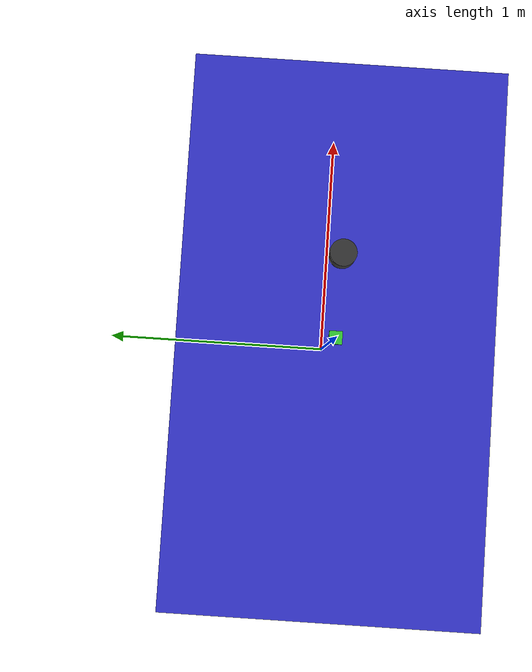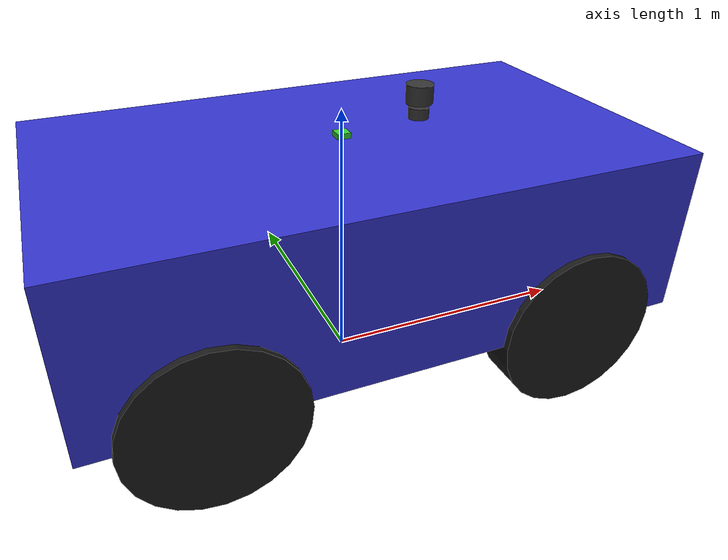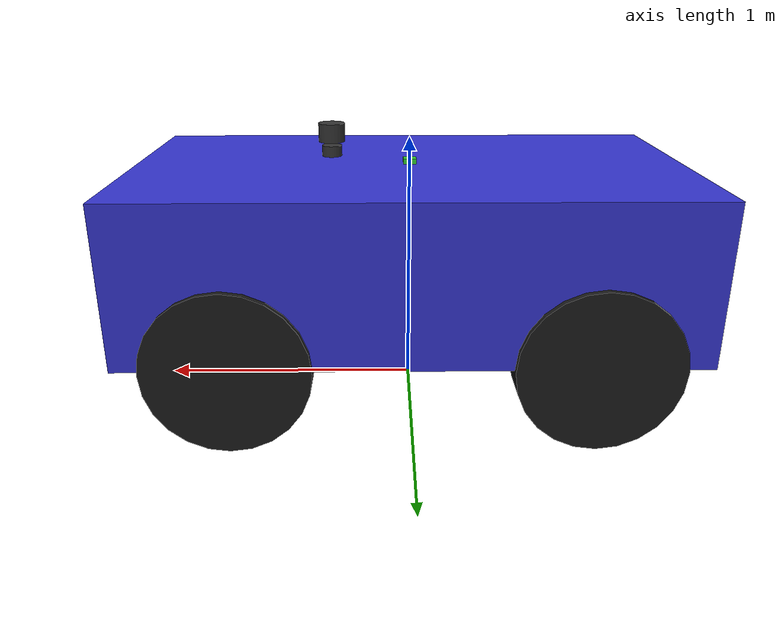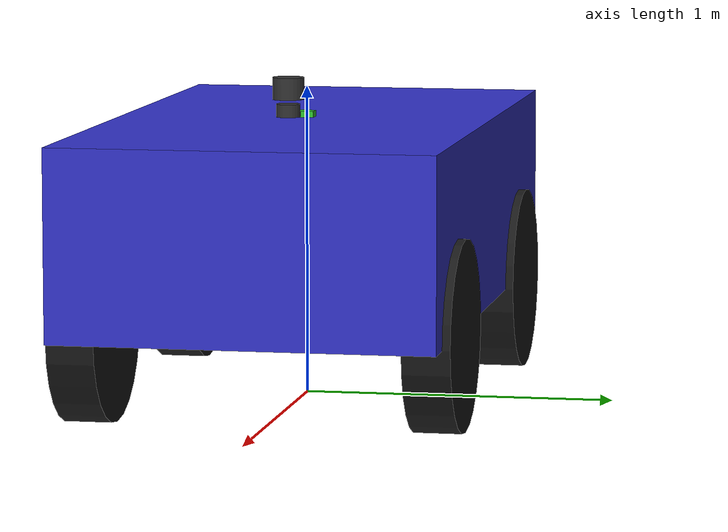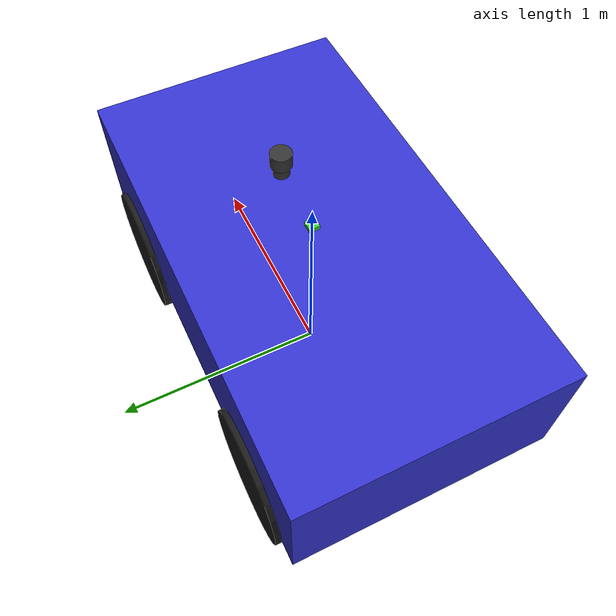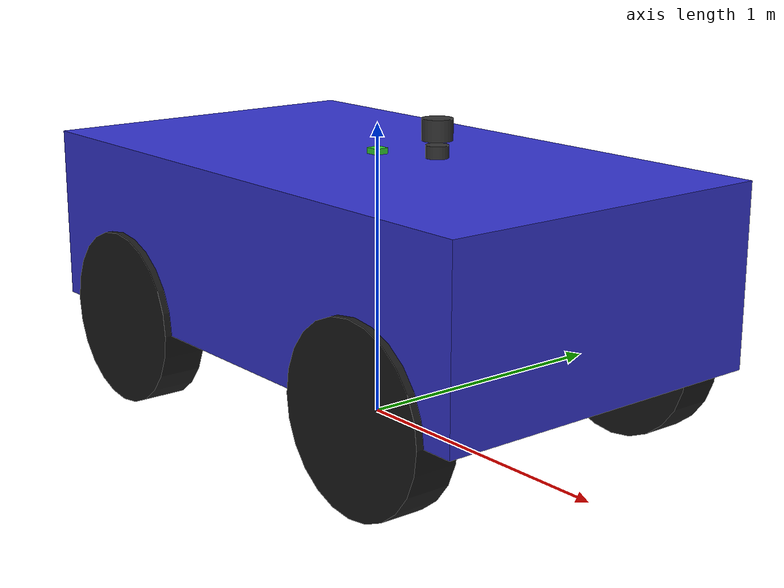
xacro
<?xml version="1.0"?>
<robot name="exia_ground" xmlns:xacro="http://www.ros.org/wiki/xacro">

  <!-- Xacro arguments -->
  <xacro:arg name="config_path" default=""/>

  <!-- ==================== PROPERTIES ==================== -->
  <!-- Chassis dimensions -->
  <!-- Length: 2.11m, Width: 1.2m, Height: 0.6m -->

  <!-- Wheel properties -->
  <!-- Radius: 0.3m, Width: 0.15m -->
  <!-- Track width (Y): 1.1m (wheel center to center) -->
  <!-- Wheel base (X): 1.3m (front to rear axle) -->

  <!-- Drive type: Ackermann steering (car-like) -->
  <!-- Front wheels: steerable -->
  <!-- Rear wheels: driven -->

  <!-- ==================== BASE FOOTPRINT ==================== -->
  <!-- Ground projection of the robot - used for navigation -->
  <link name="base_footprint"/>

  <!-- ==================== BASE LINK (CHASSIS) ==================== -->
  <link name="base_link">
    <visual>
      <origin xyz="0 0 0" rpy="0 0 0"/>
      <geometry>
        <box size="2.11 1.2 0.6"/>
      </geometry>
      <material name="blue">
        <color rgba="0.2 0.2 0.8 1"/>
      </material>
    </visual>

    <collision>
      <origin xyz="0 0 0" rpy="0 0 0"/>
      <geometry>
        <box size="2.11 1.2 0.6"/>
      </geometry>
    </collision>

    <inertial>
      <mass value="200.0"/>
      <origin xyz="0 0 0" rpy="0 0 0"/>
      <!-- Inertia for a box: Ixx = 1/12*m*(y^2+z^2), etc. -->
      <inertia ixx="30.0" ixy="0" ixz="0"
               iyy="80.2" iyz="0"
               izz="98.2"/>
    </inertial>
  </link>

  <!-- Connect base_link to base_footprint -->
  <!-- Elevate base_link by wheel_radius + half chassis height = 0.3 + 0.3 = 0.6m -->
  <joint name="base_joint" type="fixed">
    <parent link="base_footprint"/>
    <child link="base_link"/>
    <origin xyz="0 0 0.6" rpy="0 0 0"/>
  </joint>

  <!-- ==================== FRONT STEERING LINKS ==================== -->
  <!-- These are the steering knuckles that rotate to steer the front wheels -->

  <!-- FRONT LEFT STEERING LINK -->
  <link name="front_left_steer_link">
    <visual>
      <origin xyz="0 0 0" rpy="0 0 0"/>
      <geometry>
        <cylinder radius="0.05" length="0.08"/>
      </geometry>
      <material name="grey">
        <color rgba="0.5 0.5 0.5 1"/>
      </material>
    </visual>

    <collision>
      <origin xyz="0 0 0" rpy="0 0 0"/>
      <geometry>
        <cylinder radius="0.05" length="0.08"/>
      </geometry>
    </collision>

    <inertial>
      <mass value="2.0"/>
      <origin xyz="0 0 0" rpy="0 0 0"/>
      <inertia ixx="0.001" ixy="0" ixz="0"
               iyy="0.001" iyz="0"
               izz="0.001"/>
    </inertial>
  </link>

  <!-- FRONT RIGHT STEERING LINK -->
  <link name="front_right_steer_link">
    <visual>
      <origin xyz="0 0 0" rpy="0 0 0"/>
      <geometry>
        <cylinder radius="0.05" length="0.08"/>
      </geometry>
      <material name="grey">
        <color rgba="0.5 0.5 0.5 1"/>
      </material>
    </visual>

    <collision>
      <origin xyz="0 0 0" rpy="0 0 0"/>
      <geometry>
        <cylinder radius="0.05" length="0.08"/>
      </geometry>
    </collision>

    <inertial>
      <mass value="2.0"/>
      <origin xyz="0 0 0" rpy="0 0 0"/>
      <inertia ixx="0.001" ixy="0" ixz="0"
               iyy="0.001" iyz="0"
               izz="0.001"/>
    </inertial>
  </link>

  <!-- ==================== FRONT STEERING JOINTS ==================== -->
  <!-- Revolute joints that allow front wheels to steer (rotate about Z axis) -->

  <!-- FRONT LEFT STEERING JOINT -->
  <joint name="front_left_steer_joint" type="revolute">
    <parent link="base_link"/>
    <child link="front_left_steer_link"/>
    <origin xyz="0.65 0.55 -0.3" rpy="0 0 0"/>
    <axis xyz="0 0 1"/>
    <limit lower="-0.6" upper="0.6" effort="2000.0" velocity="3.0"/>
    <dynamics damping="0.0" friction="0.0"/>
  </joint>

  <!-- FRONT RIGHT STEERING JOINT -->
  <joint name="front_right_steer_joint" type="revolute">
    <parent link="base_link"/>
    <child link="front_right_steer_link"/>
    <origin xyz="0.65 -0.55 -0.3" rpy="0 0 0"/>
    <axis xyz="0 0 1"/>
    <limit lower="-0.6" upper="0.6" effort="2000.0" velocity="3.0"/>
    <dynamics damping="0.0" friction="0.0"/>
  </joint>

  <!-- ==================== FRONT WHEELS ==================== -->
  <!-- Front wheels are children of steering links, allowing them to steer -->

  <!-- FRONT LEFT WHEEL -->
  <link name="front_left_wheel">
    <visual>
      <origin xyz="0 0 0" rpy="1.5708 0 0"/>
      <geometry>
        <cylinder radius="0.3" length="0.15"/>
      </geometry>
      <material name="black">
        <color rgba="0.1 0.1 0.1 1"/>
      </material>
    </visual>

    <collision>
      <origin xyz="0 0 0" rpy="1.5708 0 0"/>
      <geometry>
        <cylinder radius="0.3" length="0.15"/>
      </geometry>
    </collision>

    <inertial>
      <mass value="10.0"/>
      <origin xyz="0 0 0" rpy="1.5708 0 0"/>
      <inertia ixx="0.244" ixy="0" ixz="0"
               iyy="0.244" iyz="0"
               izz="0.45"/>
    </inertial>
  </link>

  <!-- Front left wheel joint - child of steering link -->
  <joint name="front_left_wheel_joint" type="continuous">
    <parent link="front_left_steer_link"/>
    <child link="front_left_wheel"/>
    <origin xyz="0 0 0" rpy="0 0 0"/>
    <axis xyz="0 1 0"/>
    <dynamics damping="0.1" friction="0.1"/>
  </joint>

  <!-- FRONT RIGHT WHEEL -->
  <link name="front_right_wheel">
    <visual>
      <origin xyz="0 0 0" rpy="1.5708 0 0"/>
      <geometry>
        <cylinder radius="0.3" length="0.15"/>
      </geometry>
      <material name="black">
        <color rgba="0.1 0.1 0.1 1"/>
      </material>
    </visual>

    <collision>
      <origin xyz="0 0 0" rpy="1.5708 0 0"/>
      <geometry>
        <cylinder radius="0.3" length="0.15"/>
      </geometry>
    </collision>

    <inertial>
      <mass value="10.0"/>
      <origin xyz="0 0 0" rpy="1.5708 0 0"/>
      <inertia ixx="0.244" ixy="0" ixz="0"
               iyy="0.244" iyz="0"
               izz="0.45"/>
    </inertial>
  </link>

  <!-- Front right wheel joint - child of steering link -->
  <joint name="front_right_wheel_joint" type="continuous">
    <parent link="front_right_steer_link"/>
    <child link="front_right_wheel"/>
    <origin xyz="0 0 0" rpy="0 0 0"/>
    <axis xyz="0 1 0"/>
    <dynamics damping="0.1" friction="0.1"/>
  </joint>

  <!-- ==================== REAR WHEELS (DRIVE WHEELS) ==================== -->
  <!-- Rear wheels are directly connected to base_link and provide propulsion -->

  <!-- REAR LEFT WHEEL -->
  <link name="rear_left_wheel">
    <visual>
      <origin xyz="0 0 0" rpy="1.5708 0 0"/>
      <geometry>
        <cylinder radius="0.3" length="0.15"/>
      </geometry>
      <material name="black">
        <color rgba="0.1 0.1 0.1 1"/>
      </material>
    </visual>

    <collision>
      <origin xyz="0 0 0" rpy="1.5708 0 0"/>
      <geometry>
        <cylinder radius="0.3" length="0.15"/>
      </geometry>
    </collision>

    <inertial>
      <mass value="10.0"/>
      <origin xyz="0 0 0" rpy="1.5708 0 0"/>
      <inertia ixx="0.244" ixy="0" ixz="0"
               iyy="0.244" iyz="0"
               izz="0.45"/>
    </inertial>
  </link>

  <joint name="rear_left_wheel_joint" type="continuous">
    <parent link="base_link"/>
    <child link="rear_left_wheel"/>
    <origin xyz="-0.65 0.55 -0.3" rpy="0 0 0"/>
    <axis xyz="0 1 0"/>
    <dynamics damping="0.01" friction="0.0"/>
  </joint>

  <!-- REAR RIGHT WHEEL -->
  <link name="rear_right_wheel">
    <visual>
      <origin xyz="0 0 0" rpy="1.5708 0 0"/>
      <geometry>
        <cylinder radius="0.3" length="0.15"/>
      </geometry>
      <material name="black">
        <color rgba="0.1 0.1 0.1 1"/>
      </material>
    </visual>

    <collision>
      <origin xyz="0 0 0" rpy="1.5708 0 0"/>
      <geometry>
        <cylinder radius="0.3" length="0.15"/>
      </geometry>
    </collision>

    <inertial>
      <mass value="10.0"/>
      <origin xyz="0 0 0" rpy="1.5708 0 0"/>
      <inertia ixx="0.244" ixy="0" ixz="0"
               iyy="0.244" iyz="0"
               izz="0.45"/>
    </inertial>
  </link>

  <joint name="rear_right_wheel_joint" type="continuous">
    <parent link="base_link"/>
    <child link="rear_right_wheel"/>
    <origin xyz="-0.65 -0.55 -0.3" rpy="0 0 0"/>
    <axis xyz="0 1 0"/>
    <dynamics damping="0.01" friction="0.0"/>
  </joint>

  <!-- ==================== BRAKE SYSTEM ==================== -->
  <!-- Virtual brake actuator for simulation -->
  <!-- In real hardware: This maps to a brake motor/servo/actuator -->
  <!-- The brake_joint position (0-1) represents brake engagement level -->
  <!-- 0 = no brake, 1 = full brake -->

  <link name="brake_actuator_link">
    <visual>
      <origin xyz="0 0 0" rpy="0 0 0"/>
      <geometry>
        <box size="0.15 0.2 0.1"/>
      </geometry>
      <material name="red">
        <color rgba="0.8 0.2 0.2 1"/>
      </material>
    </visual>

    <collision>
      <origin xyz="0 0 0" rpy="0 0 0"/>
      <geometry>
        <box size="0.15 0.2 0.1"/>
      </geometry>
    </collision>

    <inertial>
      <mass value="2.0"/>
      <origin xyz="0 0 0" rpy="0 0 0"/>
      <inertia ixx="0.001" ixy="0" ixz="0"
               iyy="0.001" iyz="0"
               izz="0.001"/>
    </inertial>
  </link>

  <!-- Brake actuator joint - position controlled (0.0 to 1.0) -->
  <!-- This is a virtual joint for control purposes -->
  <joint name="brake_joint" type="revolute">
    <parent link="base_link"/>
    <child link="brake_actuator_link"/>
    <origin xyz="-0.5 0 -0.15" rpy="0 0 0"/>
    <axis xyz="0 1 0"/>
    <limit lower="0.0" upper="1.0" effort="2000.0" velocity="5.0"/>
    <dynamics damping="0.1" friction="0.0"/>
  </joint>

  <!-- ==================== IMU SENSOR ==================== -->
  <!-- IMU mounted on top of the chassis, centered -->
  <!-- This represents the Yahboom 10-axis IMU for hardware deployment -->

  <link name="imu_link">
    <visual>
      <origin xyz="0 0 0" rpy="0 0 0"/>
      <geometry>
        <box size="0.05 0.05 0.02"/>
      </geometry>
      <material name="green">
        <color rgba="0.2 0.8 0.2 1"/>
      </material>
    </visual>

    <collision>
      <origin xyz="0 0 0" rpy="0 0 0"/>
      <geometry>
        <box size="0.05 0.05 0.02"/>
      </geometry>
    </collision>

    <inertial>
      <mass value="0.05"/>
      <origin xyz="0 0 0" rpy="0 0 0"/>
      <inertia ixx="0.00001" ixy="0" ixz="0"
               iyy="0.00001" iyz="0"
               izz="0.00001"/>
    </inertial>
  </link>

  <joint name="imu_joint" type="fixed">
    <parent link="base_link"/>
    <child link="imu_link"/>
    <origin xyz="0 0 0.31" rpy="0 0 0"/>
  </joint>

  <!-- ==================== LIDAR SENSOR ==================== -->
  <!-- 2D Lidar mounted on top of the chassis -->
  <!-- Simulation: Gazebo Fortress GPU ray sensor -->
  <!-- Hardware: Slamtec RPlidar S3 (40m range, 360 deg, 32000 samples/sec) -->
  <!-- Mount position: Forward of center, above chassis for unobstructed 360 deg view -->

  <link name="lidar_link">
    <visual>
      <origin xyz="0 0 0" rpy="0 0 0"/>
      <geometry>
        <!-- RPlidar S3 approximate dimensions: 76mm diameter, 41mm height -->
        <cylinder radius="0.038" length="0.041"/>
      </geometry>
      <material name="dark_grey">
        <color rgba="0.2 0.2 0.2 1"/>
      </material>
    </visual>

    <collision>
      <origin xyz="0 0 0" rpy="0 0 0"/>
      <geometry>
        <cylinder radius="0.038" length="0.041"/>
      </geometry>
    </collision>

    <inertial>
      <mass value="0.190"/>  <!-- RPlidar S3 weight: ~190g -->
      <origin xyz="0 0 0" rpy="0 0 0"/>
      <inertia ixx="0.00005" ixy="0" ixz="0"
               iyy="0.00005" iyz="0"
               izz="0.00007"/>
    </inertial>
  </link>

  <!-- Lidar mount: Horizontal for accurate obstacle detection -->
  <!-- Z = 0.35m (35cm above base_link) for good ground clearance -->
  <!-- No tilt to avoid false ground detections in costmap -->
  <joint name="lidar_joint" type="fixed">
    <parent link="base_link"/>
    <child link="lidar_link"/>
    <origin xyz="0.3 0 0.35" rpy="0 0 0"/>
  </joint>

  <!-- ==================== 3D LIDAR SENSOR ==================== -->
  <!-- 360-degree 3D lidar for visualization (VLP-16 style) -->
  <!-- NOT used for navigation - visualization only -->
  <!-- Mounted above 2D lidar for full 360-degree 3D coverage -->

  <link name="lidar_3d_link">
    <visual>
      <origin xyz="0 0 0" rpy="0 0 0"/>
      <geometry>
        <cylinder radius="0.05" length="0.07"/>
      </geometry>
      <material name="dark_grey">
        <color rgba="0.2 0.2 0.2 1"/>
      </material>
    </visual>

    <collision>
      <origin xyz="0 0 0" rpy="0 0 0"/>
      <geometry>
        <cylinder radius="0.05" length="0.07"/>
      </geometry>
    </collision>

    <inertial>
      <mass value="0.83"/>
      <origin xyz="0 0 0" rpy="0 0 0"/>
      <inertia ixx="0.0005" ixy="0" ixz="0"
               iyy="0.0005" iyz="0"
               izz="0.001"/>
    </inertial>
  </link>

  <joint name="lidar_3d_joint" type="fixed">
    <parent link="base_link"/>
    <child link="lidar_3d_link"/>
    <origin xyz="0.3 0 0.42" rpy="0 0 0"/>
  </joint>

  <!-- ==================== GAZEBO FORTRESS PROPERTIES ==================== -->

  <!-- Wheel friction for traction -->
  <gazebo reference="front_left_wheel">
    <collision>
      <surface>
        <friction>
          <ode>
            <mu>1.5</mu>
            <mu2>1.5</mu2>
          </ode>
        </friction>
      </surface>
    </collision>
  </gazebo>

  <gazebo reference="front_right_wheel">
    <collision>
      <surface>
        <friction>
          <ode>
            <mu>1.5</mu>
            <mu2>1.5</mu2>
          </ode>
        </friction>
      </surface>
    </collision>
  </gazebo>

  <gazebo reference="rear_left_wheel">
    <collision>
      <surface>
        <friction>
          <ode>
            <mu>1.5</mu>
            <mu2>1.5</mu2>
          </ode>
        </friction>
      </surface>
    </collision>
  </gazebo>

  <gazebo reference="rear_right_wheel">
    <collision>
      <surface>
        <friction>
          <ode>
            <mu>1.5</mu>
            <mu2>1.5</mu2>
          </ode>
        </friction>
      </surface>
    </collision>
  </gazebo>

  <!-- ==================== GAZEBO FORTRESS IMU SENSOR ==================== -->
  <gazebo reference="imu_link">
    <sensor name="imu_sensor" type="imu">
      <always_on>true</always_on>
      <update_rate>200</update_rate>
      <topic>imu</topic>
      <imu>
        <angular_velocity>
          <x><noise type="gaussian"><mean>0.0</mean><stddev>0.0002</stddev></noise></x>
          <y><noise type="gaussian"><mean>0.0</mean><stddev>0.0002</stddev></noise></y>
          <z><noise type="gaussian"><mean>0.0</mean><stddev>0.0002</stddev></noise></z>
        </angular_velocity>
        <linear_acceleration>
          <x><noise type="gaussian"><mean>0.0</mean><stddev>0.017</stddev></noise></x>
          <y><noise type="gaussian"><mean>0.0</mean><stddev>0.017</stddev></noise></y>
          <z><noise type="gaussian"><mean>0.0</mean><stddev>0.017</stddev></noise></z>
        </linear_acceleration>
      </imu>
    </sensor>
  </gazebo>

  <!-- ==================== GAZEBO FORTRESS LIDAR SENSOR ==================== -->
  <!-- 2D lidar sensor matching RPlidar S3 specifications -->
  <!-- For hardware: Use rplidar_ros driver publishing to /scan topic -->
  <gazebo reference="lidar_link">
    <sensor name="gpu_lidar" type="gpu_lidar">
      <update_rate>10</update_rate>
      <topic>lidar</topic>
      <gz_frame_id>lidar_link</gz_frame_id>
      <lidar>
        <scan>
          <horizontal>
            <samples>360</samples>
            <resolution>1</resolution>
            <min_angle>-3.14159</min_angle>
            <max_angle>3.14159</max_angle>
          </horizontal>
          <vertical>
            <samples>1</samples>
            <resolution>1</resolution>
            <min_angle>0</min_angle>
            <max_angle>0</max_angle>
          </vertical>
        </scan>
        <range>
          <min>0.2</min>
          <max>20.0</max>
        </range>
      </lidar>
      <always_on>true</always_on>
      <visualize>true</visualize>
    </sensor>
  </gazebo>

  <!-- ==================== GAZEBO FORTRESS 3D LIDAR SENSOR ==================== -->
  <!-- 360-degree 3D lidar for point cloud visualization (VLP-16 style) -->
  <gazebo reference="lidar_3d_link">
    <sensor name="lidar_3d" type="gpu_lidar">
      <always_on>true</always_on>
      <update_rate>10</update_rate>
      <topic>lidar_3d</topic>
      <gz_frame_id>lidar_3d_link</gz_frame_id>
      <lidar>
        <scan>
          <horizontal>
            <samples>360</samples>
            <resolution>1</resolution>
            <min_angle>-3.14159</min_angle>
            <max_angle>3.14159</max_angle>
          </horizontal>
          <vertical>
            <samples>16</samples>
            <resolution>1</resolution>
            <min_angle>-0.261799</min_angle>
            <max_angle>0.261799</max_angle>
          </vertical>
        </scan>
        <range>
          <min>0.3</min>
          <max>20.0</max>
        </range>
        <noise>
          <type>gaussian</type>
          <mean>0.0</mean>
          <stddev>0.01</stddev>
        </noise>
      </lidar>
      <visualize>true</visualize>
    </sensor>
  </gazebo>

  <!-- ==================== ROS2 CONTROL (Gazebo Fortress) ==================== -->
  <ros2_control name="GazeboSimSystem" type="system">
    <hardware>
      <plugin>gz_ros2_control/GazeboSimSystem</plugin>
    </hardware>

    <!-- Steering joints - position control -->
    <joint name="front_left_steer_joint">
      <command_interface name="position"/>
      <state_interface name="position"/>
      <state_interface name="velocity"/>
    </joint>
    <joint name="front_right_steer_joint">
      <command_interface name="position"/>
      <state_interface name="position"/>
      <state_interface name="velocity"/>
    </joint>

    <!-- Drive joints - velocity control -->
    <joint name="rear_left_wheel_joint">
      <command_interface name="velocity"/>
      <state_interface name="position"/>
      <state_interface name="velocity"/>
    </joint>
    <joint name="rear_right_wheel_joint">
      <command_interface name="velocity"/>
      <state_interface name="position"/>
      <state_interface name="velocity"/>
    </joint>

    <!-- Brake joint - position control (0.0 to 1.0 engagement) -->
    <joint name="brake_joint">
      <command_interface name="position"/>
      <state_interface name="position"/>
      <state_interface name="velocity"/>
    </joint>
  </ros2_control>

  <gazebo>
    <plugin filename="gz_ros2_control-system" name="gz_ros2_control::GazeboSimROS2ControlPlugin">
      <robot_param>robot_description</robot_param>
      <robot_param_node>robot_state_publisher</robot_param_node>
      <!-- Only pass minimal hardware config - controllers loaded by spawners -->
      <parameters>$(arg config_path)</parameters>
    </plugin>
  </gazebo>

</robot>
